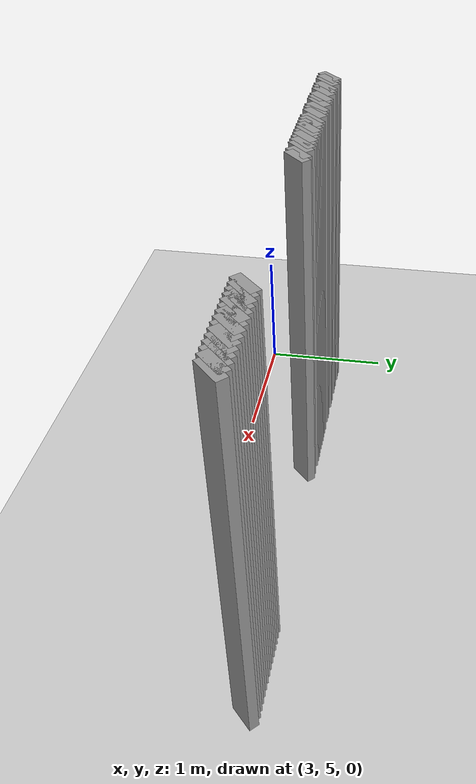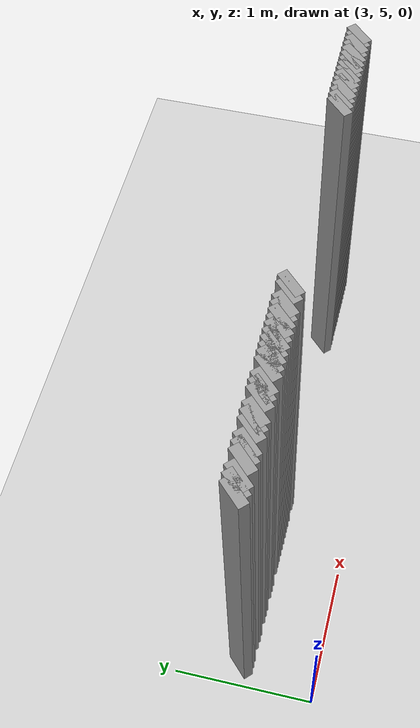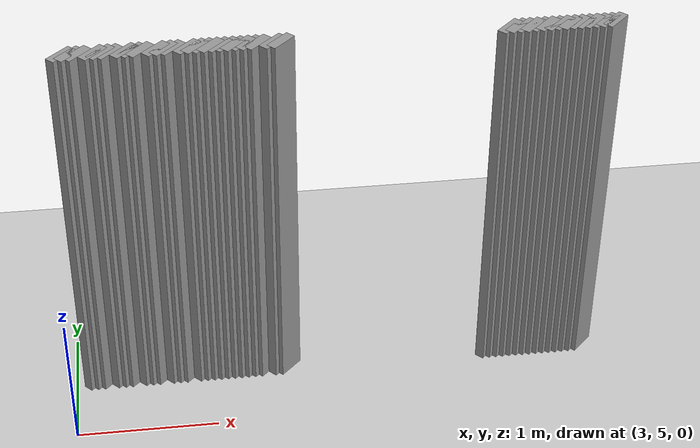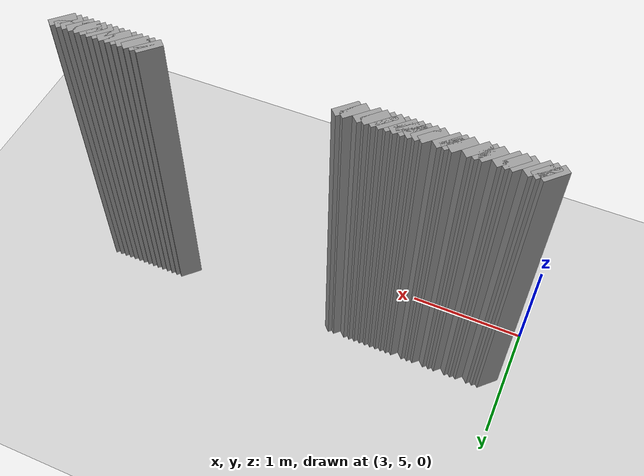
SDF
<sdf version="1.5">
 <world name="default">
  <include><uri>model://ground_plane</uri></include>
  <include><uri>model://sun</uri></include>
  <model name="grey_wall_1906">
   <static>1</static>
   <link name="link">
    <pose>3.15 5.55  1.4 0 0 -0.785398163397</pose>
    <collision name="collision"><geometry><box><size>0.0707106781187 .2  2.8</size></box></geometry></collision>
    <visual name="visual">
     <cast_shadows>0</cast_shadows>
     <geometry><box><size>0.0707106781187 .2  2.8</size></box></geometry>
     <material>
      <script>
       <uri>model://grey_wall/materials/scripts</uri>
       <uri>model://grey_wall/materials/textures</uri>
       <name>vrc/grey_wall</name>
      </script>
     </material>
    </visual>
   </link>
  </model>
  <model name="grey_wall_1907">
   <static>1</static>
   <link name="link">
    <pose>3.2 5.55  1.4 0 0 -0.785398163397</pose>
    <collision name="collision"><geometry><box><size>0.0707106781187 .2  2.8</size></box></geometry></collision>
    <visual name="visual">
     <cast_shadows>0</cast_shadows>
     <geometry><box><size>0.0707106781187 .2  2.8</size></box></geometry>
     <material>
      <script>
       <uri>model://grey_wall/materials/scripts</uri>
       <uri>model://grey_wall/materials/textures</uri>
       <name>vrc/grey_wall</name>
      </script>
     </material>
    </visual>
   </link>
  </model>
  <model name="grey_wall_1908">
   <static>1</static>
   <link name="link">
    <pose>3.25 5.55  1.4 0 0 -0.785398163397</pose>
    <collision name="collision"><geometry><box><size>0.0707106781187 .2  2.8</size></box></geometry></collision>
    <visual name="visual">
     <cast_shadows>0</cast_shadows>
     <geometry><box><size>0.0707106781187 .2  2.8</size></box></geometry>
     <material>
      <script>
       <uri>model://grey_wall/materials/scripts</uri>
       <uri>model://grey_wall/materials/textures</uri>
       <name>vrc/grey_wall</name>
      </script>
     </material>
    </visual>
   </link>
  </model>
  <model name="grey_wall_1909">
   <static>1</static>
   <link name="link">
    <pose>3.35 5.55  1.4 0 0 -0.785398163397</pose>
    <collision name="collision"><geometry><box><size>0.0707106781187 .2  2.8</size></box></geometry></collision>
    <visual name="visual">
     <cast_shadows>0</cast_shadows>
     <geometry><box><size>0.0707106781187 .2  2.8</size></box></geometry>
     <material>
      <script>
       <uri>model://grey_wall/materials/scripts</uri>
       <uri>model://grey_wall/materials/textures</uri>
       <name>vrc/grey_wall</name>
      </script>
     </material>
    </visual>
   </link>
  </model>
  <model name="grey_wall_1910">
   <static>1</static>
   <link name="link">
    <pose>3.4 5.55  1.4 0 0 -0.785398163397</pose>
    <collision name="collision"><geometry><box><size>0.0707106781187 .2  2.8</size></box></geometry></collision>
    <visual name="visual">
     <cast_shadows>0</cast_shadows>
     <geometry><box><size>0.0707106781187 .2  2.8</size></box></geometry>
     <material>
      <script>
       <uri>model://grey_wall/materials/scripts</uri>
       <uri>model://grey_wall/materials/textures</uri>
       <name>vrc/grey_wall</name>
      </script>
     </material>
    </visual>
   </link>
  </model>
  <model name="grey_wall_1911">
   <static>1</static>
   <link name="link">
    <pose>3.45 5.55  1.4 0 0 -0.785398163397</pose>
    <collision name="collision"><geometry><box><size>0.0707106781187 .2  2.8</size></box></geometry></collision>
    <visual name="visual">
     <cast_shadows>0</cast_shadows>
     <geometry><box><size>0.0707106781187 .2  2.8</size></box></geometry>
     <material>
      <script>
       <uri>model://grey_wall/materials/scripts</uri>
       <uri>model://grey_wall/materials/textures</uri>
       <name>vrc/grey_wall</name>
      </script>
     </material>
    </visual>
   </link>
  </model>
  <model name="grey_wall_1912">
   <static>1</static>
   <link name="link">
    <pose>3.55 5.55  1.4 0 0 -0.785398163397</pose>
    <collision name="collision"><geometry><box><size>0.0707106781187 .2  2.8</size></box></geometry></collision>
    <visual name="visual">
     <cast_shadows>0</cast_shadows>
     <geometry><box><size>0.0707106781187 .2  2.8</size></box></geometry>
     <material>
      <script>
       <uri>model://grey_wall/materials/scripts</uri>
       <uri>model://grey_wall/materials/textures</uri>
       <name>vrc/grey_wall</name>
      </script>
     </material>
    </visual>
   </link>
  </model>
  <model name="grey_wall_1913">
   <static>1</static>
   <link name="link">
    <pose>3.6 5.55  1.4 0 0 -0.785398163397</pose>
    <collision name="collision"><geometry><box><size>0.0707106781187 .2  2.8</size></box></geometry></collision>
    <visual name="visual">
     <cast_shadows>0</cast_shadows>
     <geometry><box><size>0.0707106781187 .2  2.8</size></box></geometry>
     <material>
      <script>
       <uri>model://grey_wall/materials/scripts</uri>
       <uri>model://grey_wall/materials/textures</uri>
       <name>vrc/grey_wall</name>
      </script>
     </material>
    </visual>
   </link>
  </model>
  <model name="grey_wall_1914">
   <static>1</static>
   <link name="link">
    <pose>3.65 5.55  1.4 0 0 -0.785398163397</pose>
    <collision name="collision"><geometry><box><size>0.0707106781187 .2  2.8</size></box></geometry></collision>
    <visual name="visual">
     <cast_shadows>0</cast_shadows>
     <geometry><box><size>0.0707106781187 .2  2.8</size></box></geometry>
     <material>
      <script>
       <uri>model://grey_wall/materials/scripts</uri>
       <uri>model://grey_wall/materials/textures</uri>
       <name>vrc/grey_wall</name>
      </script>
     </material>
    </visual>
   </link>
  </model>
  <model name="grey_wall_1915">
   <static>1</static>
   <link name="link">
    <pose>3.75 5.55  1.4 0 0 -0.785398163397</pose>
    <collision name="collision"><geometry><box><size>0.0707106781187 .2  2.8</size></box></geometry></collision>
    <visual name="visual">
     <cast_shadows>0</cast_shadows>
     <geometry><box><size>0.0707106781187 .2  2.8</size></box></geometry>
     <material>
      <script>
       <uri>model://grey_wall/materials/scripts</uri>
       <uri>model://grey_wall/materials/textures</uri>
       <name>vrc/grey_wall</name>
      </script>
     </material>
    </visual>
   </link>
  </model>
  <model name="grey_wall_1916">
   <static>1</static>
   <link name="link">
    <pose>3.8 5.55  1.4 0 0 -0.785398163397</pose>
    <collision name="collision"><geometry><box><size>0.0707106781187 .2  2.8</size></box></geometry></collision>
    <visual name="visual">
     <cast_shadows>0</cast_shadows>
     <geometry><box><size>0.0707106781187 .2  2.8</size></box></geometry>
     <material>
      <script>
       <uri>model://grey_wall/materials/scripts</uri>
       <uri>model://grey_wall/materials/textures</uri>
       <name>vrc/grey_wall</name>
      </script>
     </material>
    </visual>
   </link>
  </model>
  <model name="grey_wall_1917">
   <static>1</static>
   <link name="link">
    <pose>3.85 5.55  1.4 0 0 -0.785398163397</pose>
    <collision name="collision"><geometry><box><size>0.0707106781187 .2  2.8</size></box></geometry></collision>
    <visual name="visual">
     <cast_shadows>0</cast_shadows>
     <geometry><box><size>0.0707106781187 .2  2.8</size></box></geometry>
     <material>
      <script>
       <uri>model://grey_wall/materials/scripts</uri>
       <uri>model://grey_wall/materials/textures</uri>
       <name>vrc/grey_wall</name>
      </script>
     </material>
    </visual>
   </link>
  </model>
  <model name="grey_wall_1918">
   <static>1</static>
   <link name="link">
    <pose>3.95 5.55  1.4 0 0 -0.785398163397</pose>
    <collision name="collision"><geometry><box><size>0.0707106781187 .2  2.8</size></box></geometry></collision>
    <visual name="visual">
     <cast_shadows>0</cast_shadows>
     <geometry><box><size>0.0707106781187 .2  2.8</size></box></geometry>
     <material>
      <script>
       <uri>model://grey_wall/materials/scripts</uri>
       <uri>model://grey_wall/materials/textures</uri>
       <name>vrc/grey_wall</name>
      </script>
     </material>
    </visual>
   </link>
  </model>
  <model name="grey_wall_1919">
   <static>1</static>
   <link name="link">
    <pose>4.0 5.55  1.4 0 0 -0.785398163397</pose>
    <collision name="collision"><geometry><box><size>0.0707106781187 .2  2.8</size></box></geometry></collision>
    <visual name="visual">
     <cast_shadows>0</cast_shadows>
     <geometry><box><size>0.0707106781187 .2  2.8</size></box></geometry>
     <material>
      <script>
       <uri>model://grey_wall/materials/scripts</uri>
       <uri>model://grey_wall/materials/textures</uri>
       <name>vrc/grey_wall</name>
      </script>
     </material>
    </visual>
   </link>
  </model>
  <model name="grey_wall_1920">
   <static>1</static>
   <link name="link">
    <pose>4.05 5.55  1.4 0 0 -0.785398163397</pose>
    <collision name="collision"><geometry><box><size>0.0707106781187 .2  2.8</size></box></geometry></collision>
    <visual name="visual">
     <cast_shadows>0</cast_shadows>
     <geometry><box><size>0.0707106781187 .2  2.8</size></box></geometry>
     <material>
      <script>
       <uri>model://grey_wall/materials/scripts</uri>
       <uri>model://grey_wall/materials/textures</uri>
       <name>vrc/grey_wall</name>
      </script>
     </material>
    </visual>
   </link>
  </model>
  <model name="grey_wall_1921">
   <static>1</static>
   <link name="link">
    <pose>4.1 5.55  1.4 0 0 -0.785398163397</pose>
    <collision name="collision"><geometry><box><size>0.0707106781187 .2  2.8</size></box></geometry></collision>
    <visual name="visual">
     <cast_shadows>0</cast_shadows>
     <geometry><box><size>0.0707106781187 .2  2.8</size></box></geometry>
     <material>
      <script>
       <uri>model://grey_wall/materials/scripts</uri>
       <uri>model://grey_wall/materials/textures</uri>
       <name>vrc/grey_wall</name>
      </script>
     </material>
    </visual>
   </link>
  </model>
  <model name="grey_wall_1922">
   <static>1</static>
   <link name="link">
    <pose>4.15 5.55  1.4 0 0 -0.785398163397</pose>
    <collision name="collision"><geometry><box><size>0.0707106781187 .2  2.8</size></box></geometry></collision>
    <visual name="visual">
     <cast_shadows>0</cast_shadows>
     <geometry><box><size>0.0707106781187 .2  2.8</size></box></geometry>
     <material>
      <script>
       <uri>model://grey_wall/materials/scripts</uri>
       <uri>model://grey_wall/materials/textures</uri>
       <name>vrc/grey_wall</name>
      </script>
     </material>
    </visual>
   </link>
  </model>
  <model name="grey_wall_1923">
   <static>1</static>
   <link name="link">
    <pose>4.2 5.55  1.4 0 0 -0.785398163397</pose>
    <collision name="collision"><geometry><box><size>0.0707106781187 .2  2.8</size></box></geometry></collision>
    <visual name="visual">
     <cast_shadows>0</cast_shadows>
     <geometry><box><size>0.0707106781187 .2  2.8</size></box></geometry>
     <material>
      <script>
       <uri>model://grey_wall/materials/scripts</uri>
       <uri>model://grey_wall/materials/textures</uri>
       <name>vrc/grey_wall</name>
      </script>
     </material>
    </visual>
   </link>
  </model>
  <model name="grey_wall_1924">
   <static>1</static>
   <link name="link">
    <pose>4.25 5.55  1.4 0 0 -0.785398163397</pose>
    <collision name="collision"><geometry><box><size>0.0707106781187 .2  2.8</size></box></geometry></collision>
    <visual name="visual">
     <cast_shadows>0</cast_shadows>
     <geometry><box><size>0.0707106781187 .2  2.8</size></box></geometry>
     <material>
      <script>
       <uri>model://grey_wall/materials/scripts</uri>
       <uri>model://grey_wall/materials/textures</uri>
       <name>vrc/grey_wall</name>
      </script>
     </material>
    </visual>
   </link>
  </model>
  <model name="grey_wall_1925">
   <static>1</static>
   <link name="link">
    <pose>4.3 5.55  1.4 0 0 -0.785398163397</pose>
    <collision name="collision"><geometry><box><size>0.0707106781187 .2  2.8</size></box></geometry></collision>
    <visual name="visual">
     <cast_shadows>0</cast_shadows>
     <geometry><box><size>0.0707106781187 .2  2.8</size></box></geometry>
     <material>
      <script>
       <uri>model://grey_wall/materials/scripts</uri>
       <uri>model://grey_wall/materials/textures</uri>
       <name>vrc/grey_wall</name>
      </script>
     </material>
    </visual>
   </link>
  </model>
  <model name="grey_wall_1926">
   <static>1</static>
   <link name="link">
    <pose>4.35 5.55  1.4 0 0 -0.785398163397</pose>
    <collision name="collision"><geometry><box><size>0.0707106781187 .2  2.8</size></box></geometry></collision>
    <visual name="visual">
     <cast_shadows>0</cast_shadows>
     <geometry><box><size>0.0707106781187 .2  2.8</size></box></geometry>
     <material>
      <script>
       <uri>model://grey_wall/materials/scripts</uri>
       <uri>model://grey_wall/materials/textures</uri>
       <name>vrc/grey_wall</name>
      </script>
     </material>
    </visual>
   </link>
  </model>
  <model name="grey_wall_1927">
   <static>1</static>
   <link name="link">
    <pose>4.4 5.55  1.4 0 0 -0.785398163397</pose>
    <collision name="collision"><geometry><box><size>0.0707106781187 .2  2.8</size></box></geometry></collision>
    <visual name="visual">
     <cast_shadows>0</cast_shadows>
     <geometry><box><size>0.0707106781187 .2  2.8</size></box></geometry>
     <material>
      <script>
       <uri>model://grey_wall/materials/scripts</uri>
       <uri>model://grey_wall/materials/textures</uri>
       <name>vrc/grey_wall</name>
      </script>
     </material>
    </visual>
   </link>
  </model>
  <model name="grey_wall_1928">
   <static>1</static>
   <link name="link">
    <pose>4.5 5.55  1.4 0 0 -0.785398163397</pose>
    <collision name="collision"><geometry><box><size>0.0707106781187 .2  2.8</size></box></geometry></collision>
    <visual name="visual">
     <cast_shadows>0</cast_shadows>
     <geometry><box><size>0.0707106781187 .2  2.8</size></box></geometry>
     <material>
      <script>
       <uri>model://grey_wall/materials/scripts</uri>
       <uri>model://grey_wall/materials/textures</uri>
       <name>vrc/grey_wall</name>
      </script>
     </material>
    </visual>
   </link>
  </model>
  <model name="grey_wall_1929">
   <static>1</static>
   <link name="link">
    <pose>4.55 5.55  1.4 0 0 -0.785398163397</pose>
    <collision name="collision"><geometry><box><size>0.0707106781187 .2  2.8</size></box></geometry></collision>
    <visual name="visual">
     <cast_shadows>0</cast_shadows>
     <geometry><box><size>0.0707106781187 .2  2.8</size></box></geometry>
     <material>
      <script>
       <uri>model://grey_wall/materials/scripts</uri>
       <uri>model://grey_wall/materials/textures</uri>
       <name>vrc/grey_wall</name>
      </script>
     </material>
    </visual>
   </link>
  </model>
  <model name="grey_wall_1930">
   <static>1</static>
   <link name="link">
    <pose>6.05 5.55  1.4 0 0 -0.785398163397</pose>
    <collision name="collision"><geometry><box><size>0.0707106781187 .2  2.8</size></box></geometry></collision>
    <visual name="visual">
     <cast_shadows>0</cast_shadows>
     <geometry><box><size>0.0707106781187 .2  2.8</size></box></geometry>
     <material>
      <script>
       <uri>model://grey_wall/materials/scripts</uri>
       <uri>model://grey_wall/materials/textures</uri>
       <name>vrc/grey_wall</name>
      </script>
     </material>
    </visual>
   </link>
  </model>
  <model name="grey_wall_1931">
   <static>1</static>
   <link name="link">
    <pose>6.1 5.55  1.4 0 0 -0.785398163397</pose>
    <collision name="collision"><geometry><box><size>0.0707106781187 .2  2.8</size></box></geometry></collision>
    <visual name="visual">
     <cast_shadows>0</cast_shadows>
     <geometry><box><size>0.0707106781187 .2  2.8</size></box></geometry>
     <material>
      <script>
       <uri>model://grey_wall/materials/scripts</uri>
       <uri>model://grey_wall/materials/textures</uri>
       <name>vrc/grey_wall</name>
      </script>
     </material>
    </visual>
   </link>
  </model>
  <model name="grey_wall_1932">
   <static>1</static>
   <link name="link">
    <pose>6.15 5.55  1.4 0 0 -0.785398163397</pose>
    <collision name="collision"><geometry><box><size>0.0707106781187 .2  2.8</size></box></geometry></collision>
    <visual name="visual">
     <cast_shadows>0</cast_shadows>
     <geometry><box><size>0.0707106781187 .2  2.8</size></box></geometry>
     <material>
      <script>
       <uri>model://grey_wall/materials/scripts</uri>
       <uri>model://grey_wall/materials/textures</uri>
       <name>vrc/grey_wall</name>
      </script>
     </material>
    </visual>
   </link>
  </model>
  <model name="grey_wall_1933">
   <static>1</static>
   <link name="link">
    <pose>6.2 5.55  1.4 0 0 -0.785398163397</pose>
    <collision name="collision"><geometry><box><size>0.0707106781187 .2  2.8</size></box></geometry></collision>
    <visual name="visual">
     <cast_shadows>0</cast_shadows>
     <geometry><box><size>0.0707106781187 .2  2.8</size></box></geometry>
     <material>
      <script>
       <uri>model://grey_wall/materials/scripts</uri>
       <uri>model://grey_wall/materials/textures</uri>
       <name>vrc/grey_wall</name>
      </script>
     </material>
    </visual>
   </link>
  </model>
  <model name="grey_wall_1934">
   <static>1</static>
   <link name="link">
    <pose>6.25 5.55  1.4 0 0 -0.785398163397</pose>
    <collision name="collision"><geometry><box><size>0.0707106781187 .2  2.8</size></box></geometry></collision>
    <visual name="visual">
     <cast_shadows>0</cast_shadows>
     <geometry><box><size>0.0707106781187 .2  2.8</size></box></geometry>
     <material>
      <script>
       <uri>model://grey_wall/materials/scripts</uri>
       <uri>model://grey_wall/materials/textures</uri>
       <name>vrc/grey_wall</name>
      </script>
     </material>
    </visual>
   </link>
  </model>
  <model name="grey_wall_1935">
   <static>1</static>
   <link name="link">
    <pose>6.3 5.55  1.4 0 0 -0.785398163397</pose>
    <collision name="collision"><geometry><box><size>0.0707106781187 .2  2.8</size></box></geometry></collision>
    <visual name="visual">
     <cast_shadows>0</cast_shadows>
     <geometry><box><size>0.0707106781187 .2  2.8</size></box></geometry>
     <material>
      <script>
       <uri>model://grey_wall/materials/scripts</uri>
       <uri>model://grey_wall/materials/textures</uri>
       <name>vrc/grey_wall</name>
      </script>
     </material>
    </visual>
   </link>
  </model>
  <model name="grey_wall_1936">
   <static>1</static>
   <link name="link">
    <pose>6.35 5.55  1.4 0 0 -0.785398163397</pose>
    <collision name="collision"><geometry><box><size>0.0707106781187 .2  2.8</size></box></geometry></collision>
    <visual name="visual">
     <cast_shadows>0</cast_shadows>
     <geometry><box><size>0.0707106781187 .2  2.8</size></box></geometry>
     <material>
      <script>
       <uri>model://grey_wall/materials/scripts</uri>
       <uri>model://grey_wall/materials/textures</uri>
       <name>vrc/grey_wall</name>
      </script>
     </material>
    </visual>
   </link>
  </model>
  <model name="grey_wall_1937">
   <static>1</static>
   <link name="link">
    <pose>6.4 5.55  1.4 0 0 -0.785398163397</pose>
    <collision name="collision"><geometry><box><size>0.0707106781187 .2  2.8</size></box></geometry></collision>
    <visual name="visual">
     <cast_shadows>0</cast_shadows>
     <geometry><box><size>0.0707106781187 .2  2.8</size></box></geometry>
     <material>
      <script>
       <uri>model://grey_wall/materials/scripts</uri>
       <uri>model://grey_wall/materials/textures</uri>
       <name>vrc/grey_wall</name>
      </script>
     </material>
    </visual>
   </link>
  </model>
  <model name="grey_wall_1938">
   <static>1</static>
   <link name="link">
    <pose>6.45 5.55  1.4 0 0 -0.785398163397</pose>
    <collision name="collision"><geometry><box><size>0.0707106781187 .2  2.8</size></box></geometry></collision>
    <visual name="visual">
     <cast_shadows>0</cast_shadows>
     <geometry><box><size>0.0707106781187 .2  2.8</size></box></geometry>
     <material>
      <script>
       <uri>model://grey_wall/materials/scripts</uri>
       <uri>model://grey_wall/materials/textures</uri>
       <name>vrc/grey_wall</name>
      </script>
     </material>
    </visual>
   </link>
  </model>
  <model name="grey_wall_1939">
   <static>1</static>
   <link name="link">
    <pose>6.5 5.55  1.4 0 0 -0.785398163397</pose>
    <collision name="collision"><geometry><box><size>0.0707106781187 .2  2.8</size></box></geometry></collision>
    <visual name="visual">
     <cast_shadows>0</cast_shadows>
     <geometry><box><size>0.0707106781187 .2  2.8</size></box></geometry>
     <material>
      <script>
       <uri>model://grey_wall/materials/scripts</uri>
       <uri>model://grey_wall/materials/textures</uri>
       <name>vrc/grey_wall</name>
      </script>
     </material>
    </visual>
   </link>
  </model>
  <model name="grey_wall_1940">
   <static>1</static>
   <link name="link">
    <pose>6.55 5.55  1.4 0 0 -0.785398163397</pose>
    <collision name="collision"><geometry><box><size>0.0707106781187 .2  2.8</size></box></geometry></collision>
    <visual name="visual">
     <cast_shadows>0</cast_shadows>
     <geometry><box><size>0.0707106781187 .2  2.8</size></box></geometry>
     <material>
      <script>
       <uri>model://grey_wall/materials/scripts</uri>
       <uri>model://grey_wall/materials/textures</uri>
       <name>vrc/grey_wall</name>
      </script>
     </material>
    </visual>
   </link>
  </model>
  <model name="grey_wall_1941">
   <static>1</static>
   <link name="link">
    <pose>6.6 5.55  1.4 0 0 -0.785398163397</pose>
    <collision name="collision"><geometry><box><size>0.0707106781187 .2  2.8</size></box></geometry></collision>
    <visual name="visual">
     <cast_shadows>0</cast_shadows>
     <geometry><box><size>0.0707106781187 .2  2.8</size></box></geometry>
     <material>
      <script>
       <uri>model://grey_wall/materials/scripts</uri>
       <uri>model://grey_wall/materials/textures</uri>
       <name>vrc/grey_wall</name>
      </script>
     </material>
    </visual>
   </link>
  </model>
  <model name="grey_wall_1942">
   <static>1</static>
   <link name="link">
    <pose>6.65 5.55  1.4 0 0 -0.785398163397</pose>
    <collision name="collision"><geometry><box><size>0.0707106781187 .2  2.8</size></box></geometry></collision>
    <visual name="visual">
     <cast_shadows>0</cast_shadows>
     <geometry><box><size>0.0707106781187 .2  2.8</size></box></geometry>
     <material>
      <script>
       <uri>model://grey_wall/materials/scripts</uri>
       <uri>model://grey_wall/materials/textures</uri>
       <name>vrc/grey_wall</name>
      </script>
     </material>
    </visual>
   </link>
  </model>
  <model name="grey_wall_1943">
   <static>1</static>
   <link name="link">
    <pose>6.7 5.55  1.4 0 0 -0.785398163397</pose>
    <collision name="collision"><geometry><box><size>0.0707106781187 .2  2.8</size></box></geometry></collision>
    <visual name="visual">
     <cast_shadows>0</cast_shadows>
     <geometry><box><size>0.0707106781187 .2  2.8</size></box></geometry>
     <material>
      <script>
       <uri>model://grey_wall/materials/scripts</uri>
       <uri>model://grey_wall/materials/textures</uri>
       <name>vrc/grey_wall</name>
      </script>
     </material>
    </visual>
   </link>
  </model>
  <model name="grey_wall_1944">
   <static>1</static>
   <link name="link">
    <pose>6.75 5.55  1.4 0 0 -0.785398163397</pose>
    <collision name="collision"><geometry><box><size>0.0707106781187 .2  2.8</size></box></geometry></collision>
    <visual name="visual">
     <cast_shadows>0</cast_shadows>
     <geometry><box><size>0.0707106781187 .2  2.8</size></box></geometry>
     <material>
      <script>
       <uri>model://grey_wall/materials/scripts</uri>
       <uri>model://grey_wall/materials/textures</uri>
       <name>vrc/grey_wall</name>
      </script>
     </material>
    </visual>
   </link>
  </model>
 </world>
</sdf>
